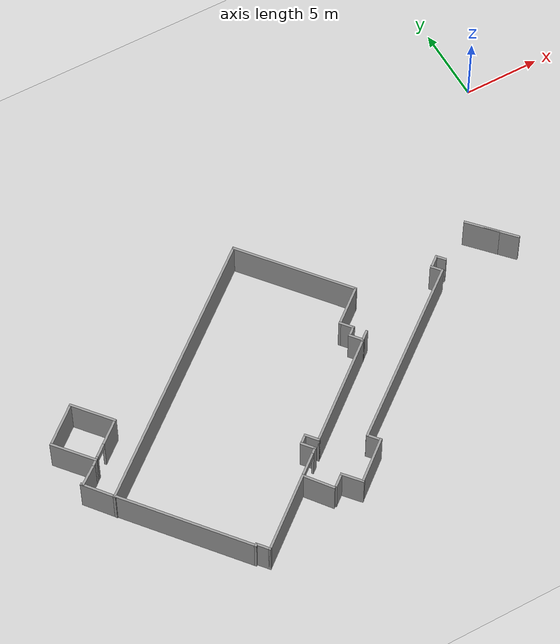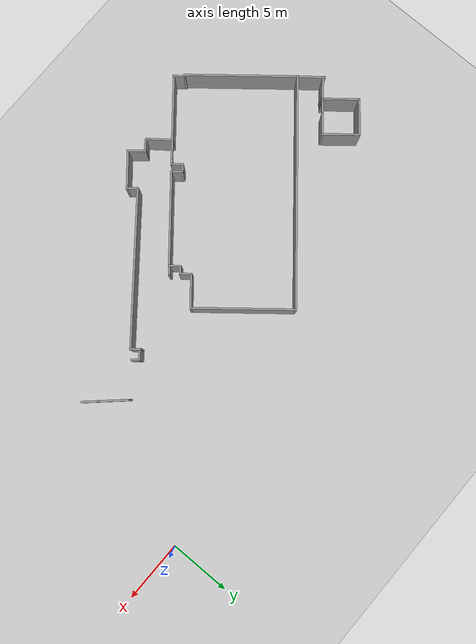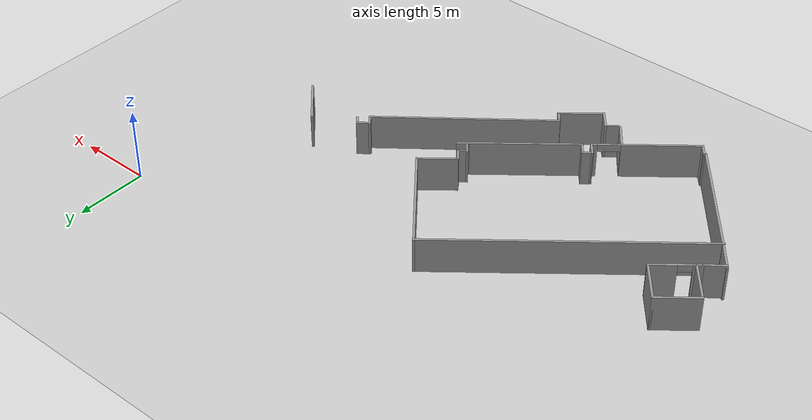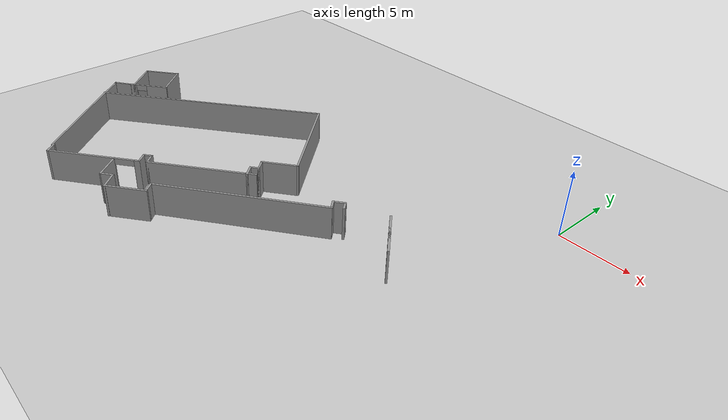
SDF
<sdf version="1.6">
 <world name="default">
  <model name="ground_plane">
   <static>1</static>
   <link name="link">
    <collision name="collision">
     <geometry><plane><normal>0 0 1</normal><size>100 100</size></plane></geometry>
     <surface>
      <contact><collide_bitmask>65535</collide_bitmask></contact>
      <friction><ode><mu>100</mu><mu2>50</mu2></ode></friction>
     </surface>
    </collision>
    <visual name="visual">
     <cast_shadows>0</cast_shadows>
     <geometry><plane><normal>0 0 1</normal><size>100 100</size></plane></geometry>
     <material>
      <script><uri>file://media/materials/scripts/gazebo.material</uri><name>Gazebo/Grey</name></script>
     </material>
    </visual>
   </link>
  </model>
  <model name="wall(2.3)_clone">
   <link name="Wall_0">
    <pose>0.83486 -0.115986 -0.042972 0 -0 0</pose>
    <inertial>
     <mass>1</mass>
     <inertia><ixx>1</ixx><ixy>0</ixy><ixz>0</ixz><iyy>1</iyy><iyz>0</iyz><izz>1</izz></inertia>
    </inertial>
    <visual name="Wall_0_Visual">
     <pose>0 0 1.25 0 -0 0</pose>
     <geometry><box><size>2.3 0.15 2.5</size></box></geometry>
     <material>
      <script><uri>file://media/materials/scripts/gazebo.material</uri><name>Gazebo/Grey</name></script>
      <ambient>1 1 1 1</ambient>
      <shader type="vertex"><normal_map>__default__</normal_map></shader>
      <diffuse>0.7 0.7 0.7 1</diffuse>
      <specular>0.01 0.01 0.01 1</specular>
      <emissive>0 0 0 1</emissive>
     </material>
     <meta><layer>0</layer></meta>
    </visual>
    <collision name="Wall_0_Collision">
     <pose>0 0 1.25 0 -0 0</pose>
     <geometry><box><size>2.25 0.15 2.5</size></box></geometry>
     <surface>
      <friction>
       <ode><mu>1</mu><mu2>1</mu2><fdir1>0 0 0</fdir1><slip1>0</slip1><slip2>0</slip2></ode>
       <torsional>
        <coefficient>1</coefficient>
        <patch_radius>0</patch_radius>
        <surface_radius>0</surface_radius>
        <use_patch_radius>1</use_patch_radius>
        <ode><slip>0</slip></ode>
       </torsional>
      </friction>
      <bounce><restitution_coefficient>0</restitution_coefficient><threshold>1e+06</threshold></bounce>
      <contact>
       <collide_without_contact>0</collide_without_contact>
       <collide_without_contact_bitmask>1</collide_without_contact_bitmask>
       <collide_bitmask>1</collide_bitmask>
       <ode>
        <soft_cfm>0</soft_cfm>
        <soft_erp>0.2</soft_erp>
        <kp>1e+13</kp>
        <kd>1</kd>
        <max_vel>0.01</max_vel>
        <min_depth>0</min_depth>
       </ode>
       <bullet>
        <split_impulse>1</split_impulse>
        <split_impulse_penetration_threshold>-0.01</split_impulse_penetration_threshold>
        <soft_cfm>0</soft_cfm>
        <soft_erp>0.2</soft_erp>
        <kp>1e+13</kp>
        <kd>1</kd>
       </bullet>
      </contact>
     </surface>
    </collision>
   </link>
   <static>1</static>
   <pose>-5.0787 -10.7376 0 0 0 -0.829206</pose>
  </model>
  <model name="wall(2.3)_clone_clone">
   <link name="Wall_0">
    <pose>0.83486 -0.115986 -0.042972 0 -0 0</pose>
    <inertial>
     <mass>1</mass>
     <inertia><ixx>1</ixx><ixy>0</ixy><ixz>0</ixz><iyy>1</iyy><iyz>0</iyz><izz>1</izz></inertia>
    </inertial>
    <visual name="Wall_0_Visual">
     <pose>0 0 1.25 0 -0 0</pose>
     <geometry><box><size>2.3 0.15 2.5</size></box></geometry>
     <material>
      <script><uri>file://media/materials/scripts/gazebo.material</uri><name>Gazebo/Grey</name></script>
      <ambient>1 1 1 1</ambient>
      <shader type="vertex"><normal_map>__default__</normal_map></shader>
      <diffuse>0.7 0.7 0.7 1</diffuse>
      <specular>0.01 0.01 0.01 1</specular>
      <emissive>0 0 0 1</emissive>
     </material>
     <meta><layer>0</layer></meta>
    </visual>
    <collision name="Wall_0_Collision">
     <pose>0 0 1.25 0 -0 0</pose>
     <geometry><box><size>2.25 0.15 2.5</size></box></geometry>
     <surface>
      <friction>
       <ode><mu>1</mu><mu2>1</mu2><fdir1>0 0 0</fdir1><slip1>0</slip1><slip2>0</slip2></ode>
       <torsional>
        <coefficient>1</coefficient>
        <patch_radius>0</patch_radius>
        <surface_radius>0</surface_radius>
        <use_patch_radius>1</use_patch_radius>
        <ode><slip>0</slip></ode>
       </torsional>
      </friction>
      <bounce><restitution_coefficient>0</restitution_coefficient><threshold>1e+06</threshold></bounce>
      <contact>
       <collide_without_contact>0</collide_without_contact>
       <collide_without_contact_bitmask>1</collide_without_contact_bitmask>
       <collide_bitmask>1</collide_bitmask>
       <ode>
        <soft_cfm>0</soft_cfm>
        <soft_erp>0.2</soft_erp>
        <kp>1e+13</kp>
        <kd>1</kd>
        <max_vel>0.01</max_vel>
        <min_depth>0</min_depth>
       </ode>
       <bullet>
        <split_impulse>1</split_impulse>
        <split_impulse_penetration_threshold>-0.01</split_impulse_penetration_threshold>
        <soft_cfm>0</soft_cfm>
        <soft_erp>0.2</soft_erp>
        <kp>1e+13</kp>
        <kd>1</kd>
       </bullet>
      </contact>
     </surface>
    </collision>
   </link>
   <static>1</static>
   <pose>-5.9321 -9.80857 0 0 0 -0.829206</pose>
  </model>
  <model name="wall(0.6)_0">
   <link name="Wall_0">
    <inertial>
     <mass>1</mass>
     <inertia><ixx>1</ixx><ixy>0</ixy><ixz>0</ixz><iyy>1</iyy><iyz>0</iyz><izz>1</izz></inertia>
    </inertial>
    <visual name="Wall_0_Visual">
     <pose>0 0 1.25 0 -0 0</pose>
     <geometry><box><size>0.6 0.15 2.5</size></box></geometry>
     <material>
      <script><uri>file://media/materials/scripts/gazebo.material</uri><name>Gazebo/Grey</name></script>
      <ambient>1 1 1 1</ambient>
      <shader type="vertex"><normal_map>__default__</normal_map></shader>
      <diffuse>0.7 0.7 0.7 1</diffuse>
      <specular>0.01 0.01 0.01 1</specular>
      <emissive>0 0 0 1</emissive>
     </material>
     <meta><layer>0</layer></meta>
    </visual>
    <collision name="Wall_0_Collision">
     <pose>0 0 1.25 0 -0 0</pose>
     <geometry><box><size>2.25 0.15 2.5</size></box></geometry>
     <surface>
      <friction>
       <ode><mu>1</mu><mu2>1</mu2><fdir1>0 0 0</fdir1><slip1>0</slip1><slip2>0</slip2></ode>
       <torsional>
        <coefficient>1</coefficient>
        <patch_radius>0</patch_radius>
        <surface_radius>0</surface_radius>
        <use_patch_radius>1</use_patch_radius>
        <ode><slip>0</slip></ode>
       </torsional>
      </friction>
      <bounce><restitution_coefficient>0</restitution_coefficient><threshold>1e+06</threshold></bounce>
      <contact>
       <collide_without_contact>0</collide_without_contact>
       <collide_without_contact_bitmask>1</collide_without_contact_bitmask>
       <collide_bitmask>1</collide_bitmask>
       <ode>
        <soft_cfm>0</soft_cfm>
        <soft_erp>0.2</soft_erp>
        <kp>1e+13</kp>
        <kd>1</kd>
        <max_vel>0.01</max_vel>
        <min_depth>0</min_depth>
       </ode>
       <bullet>
        <split_impulse>1</split_impulse>
        <split_impulse_penetration_threshold>-0.01</split_impulse_penetration_threshold>
        <soft_cfm>0</soft_cfm>
        <soft_erp>0.2</soft_erp>
        <kp>1e+13</kp>
        <kd>1</kd>
       </bullet>
      </contact>
     </surface>
    </collision>
   </link>
   <static>1</static>
   <pose>-8.78678 -11.2831 0 0 0 -0.868323</pose>
  </model>
  <model name="wall(0.83)_0_clone">
   <link name="Wall_0">
    <inertial>
     <mass>1</mass>
     <inertia><ixx>1</ixx><ixy>0</ixy><ixz>0</ixz><iyy>1</iyy><iyz>0</iyz><izz>1</izz></inertia>
    </inertial>
    <visual name="Wall_0_Visual">
     <pose>0 0 1.25 0 -0 0</pose>
     <geometry><box><size>0.83 0.15 2.5</size></box></geometry>
     <material>
      <script><uri>file://media/materials/scripts/gazebo.material</uri><name>Gazebo/Grey</name></script>
      <ambient>1 1 1 1</ambient>
      <shader type="vertex"><normal_map>__default__</normal_map></shader>
      <diffuse>0.7 0.7 0.7 1</diffuse>
      <specular>0.01 0.01 0.01 1</specular>
      <emissive>0 0 0 1</emissive>
     </material>
     <meta><layer>0</layer></meta>
    </visual>
    <collision name="Wall_0_Collision">
     <pose>0 0 1.25 0 -0 0</pose>
     <geometry><box><size>2.25 0.15 2.5</size></box></geometry>
     <surface>
      <friction>
       <ode><mu>1</mu><mu2>1</mu2><fdir1>0 0 0</fdir1><slip1>0</slip1><slip2>0</slip2></ode>
       <torsional>
        <coefficient>1</coefficient>
        <patch_radius>0</patch_radius>
        <surface_radius>0</surface_radius>
        <use_patch_radius>1</use_patch_radius>
        <ode><slip>0</slip></ode>
       </torsional>
      </friction>
      <bounce><restitution_coefficient>0</restitution_coefficient><threshold>1e+06</threshold></bounce>
      <contact>
       <collide_without_contact>0</collide_without_contact>
       <collide_without_contact_bitmask>1</collide_without_contact_bitmask>
       <collide_bitmask>1</collide_bitmask>
       <ode>
        <soft_cfm>0</soft_cfm>
        <soft_erp>0.2</soft_erp>
        <kp>1e+13</kp>
        <kd>1</kd>
        <max_vel>0.01</max_vel>
        <min_depth>0</min_depth>
       </ode>
       <bullet>
        <split_impulse>1</split_impulse>
        <split_impulse_penetration_threshold>-0.01</split_impulse_penetration_threshold>
        <soft_cfm>0</soft_cfm>
        <soft_erp>0.2</soft_erp>
        <kp>1e+13</kp>
        <kd>1</kd>
       </bullet>
      </contact>
     </surface>
    </collision>
   </link>
   <static>1</static>
   <pose>-9.27906 -11.23 0 0 -0 0.678455</pose>
  </model>
  <model name="wall(0.83)_0_clone_clone">
   <link name="Wall_0">
    <inertial>
     <mass>1</mass>
     <inertia><ixx>1</ixx><ixy>0</ixy><ixz>0</ixz><iyy>1</iyy><iyz>0</iyz><izz>1</izz></inertia>
    </inertial>
    <visual name="Wall_0_Visual">
     <pose>0 0 1.25 0 -0 0</pose>
     <geometry><box><size>0.83 0.15 2.5</size></box></geometry>
     <material>
      <script><uri>file://media/materials/scripts/gazebo.material</uri><name>Gazebo/Grey</name></script>
      <ambient>1 1 1 1</ambient>
      <shader type="vertex"><normal_map>__default__</normal_map></shader>
      <diffuse>0.7 0.7 0.7 1</diffuse>
      <specular>0.01 0.01 0.01 1</specular>
      <emissive>0 0 0 1</emissive>
     </material>
     <meta><layer>0</layer></meta>
    </visual>
    <collision name="Wall_0_Collision">
     <pose>0 0 1.25 0 -0 0</pose>
     <geometry><box><size>2.25 0.15 2.5</size></box></geometry>
     <surface>
      <friction>
       <ode><mu>1</mu><mu2>1</mu2><fdir1>0 0 0</fdir1><slip1>0</slip1><slip2>0</slip2></ode>
       <torsional>
        <coefficient>1</coefficient>
        <patch_radius>0</patch_radius>
        <surface_radius>0</surface_radius>
        <use_patch_radius>1</use_patch_radius>
        <ode><slip>0</slip></ode>
       </torsional>
      </friction>
      <bounce><restitution_coefficient>0</restitution_coefficient><threshold>1e+06</threshold></bounce>
      <contact>
       <collide_without_contact>0</collide_without_contact>
       <collide_without_contact_bitmask>1</collide_without_contact_bitmask>
       <collide_bitmask>1</collide_bitmask>
       <ode>
        <soft_cfm>0</soft_cfm>
        <soft_erp>0.2</soft_erp>
        <kp>1e+13</kp>
        <kd>1</kd>
        <max_vel>0.01</max_vel>
        <min_depth>0</min_depth>
       </ode>
       <bullet>
        <split_impulse>1</split_impulse>
        <split_impulse_penetration_threshold>-0.01</split_impulse_penetration_threshold>
        <soft_cfm>0</soft_cfm>
        <soft_erp>0.2</soft_erp>
        <kp>1e+13</kp>
        <kd>1</kd>
       </bullet>
      </contact>
     </surface>
    </collision>
   </link>
   <static>1</static>
   <pose>-9.43003 -11.7738 0 0 -0 2.26983</pose>
  </model>
  <model name="wall(12.5)_clone">
   <link name="Wall_106">
    <pose>-2.9353 0.017524 0 0 0 -0.005631</pose>
    <inertial>
     <mass>1</mass>
     <inertia><ixx>1</ixx><ixy>0</ixy><ixz>0</ixz><iyy>1</iyy><iyz>0</iyz><izz>1</izz></inertia>
    </inertial>
    <visual name="Wall_106_Visual">
     <pose>0 0 1.25 0 -0 0</pose>
     <geometry><box><size>12.5 0.15 2.5</size></box></geometry>
     <material>
      <script><uri>file://media/materials/scripts/gazebo.material</uri><name>Gazebo/Grey</name></script>
      <ambient>1 1 1 1</ambient>
      <shader type="vertex"><normal_map>__default__</normal_map></shader>
      <diffuse>0.7 0.7 0.7 1</diffuse>
      <specular>0.01 0.01 0.01 1</specular>
      <emissive>0 0 0 1</emissive>
     </material>
     <meta><layer>0</layer></meta>
    </visual>
    <collision name="Wall_106_Collision">
     <pose>0 0 1.25 0 -0 0</pose>
     <geometry><box><size>6.75 0.15 2.5</size></box></geometry>
     <surface>
      <friction>
       <ode><mu>1</mu><mu2>1</mu2><fdir1>0 0 0</fdir1><slip1>0</slip1><slip2>0</slip2></ode>
       <torsional>
        <coefficient>1</coefficient>
        <patch_radius>0</patch_radius>
        <surface_radius>0</surface_radius>
        <use_patch_radius>1</use_patch_radius>
        <ode><slip>0</slip></ode>
       </torsional>
      </friction>
      <bounce><restitution_coefficient>0</restitution_coefficient><threshold>1e+06</threshold></bounce>
      <contact>
       <collide_without_contact>0</collide_without_contact>
       <collide_without_contact_bitmask>1</collide_without_contact_bitmask>
       <collide_bitmask>1</collide_bitmask>
       <ode>
        <soft_cfm>0</soft_cfm>
        <soft_erp>0.2</soft_erp>
        <kp>1e+13</kp>
        <kd>1</kd>
        <max_vel>0.01</max_vel>
        <min_depth>0</min_depth>
       </ode>
       <bullet>
        <split_impulse>1</split_impulse>
        <split_impulse_penetration_threshold>-0.01</split_impulse_penetration_threshold>
        <soft_cfm>0</soft_cfm>
        <soft_erp>0.2</soft_erp>
        <kp>1e+13</kp>
        <kd>1</kd>
       </bullet>
      </contact>
     </surface>
    </collision>
   </link>
   <static>1</static>
   <pose>-11.7429 -14.0693 0 0 -0 0.676604</pose>
  </model>
  <model name="1815">
   <pose>-23.5714 -13.996 0 0 -0 0.685676</pose>
   <link name="Wall_66">
    <pose>-5.50546 -4.85 0 0 -0 3.14159</pose>
    <visual name="Wall_66_Visual_0">
     <pose>-3.39963 0 1.25 0 -0 0</pose>
     <geometry><box><size>0.450736 0.15 2.5</size></box></geometry>
     <material>
      <script><uri>file://media/materials/scripts/gazebo.material</uri><name>Gazebo/Grey</name></script>
      <ambient>1 1 1 1</ambient>
     </material>
     <meta><layer>0</layer></meta>
    </visual>
    <collision name="Wall_66_Collision_0">
     <geometry><box><size>0.450736 0.15 2.5</size></box></geometry>
     <pose>-3.39963 0 1.25 0 -0 0</pose>
    </collision>
    <visual name="Wall_66_Visual_1">
     <pose>0.975368 0 1.25 0 -0 0</pose>
     <geometry><box><size>5.29926 0.15 2.5</size></box></geometry>
     <material>
      <script><uri>file://media/materials/scripts/gazebo.material</uri><name>Gazebo/Grey</name></script>
      <ambient>1 1 1 1</ambient>
     </material>
     <meta><layer>0</layer></meta>
    </visual>
    <collision name="Wall_66_Collision_1">
     <geometry><box><size>5.29926 0.15 2.5</size></box></geometry>
     <pose>0.975368 0 1.25 0 -0 0</pose>
    </collision>
    <visual name="Wall_66_Visual_2">
     <pose>-2.42426 0 2.25 0 -0 0</pose>
     <geometry><box><size>1.5 0.15 0.5</size></box></geometry>
     <material>
      <script><uri>file://media/materials/scripts/gazebo.material</uri><name>Gazebo/Grey</name></script>
      <ambient>1 1 1 1</ambient>
     </material>
     <meta><layer>0</layer></meta>
    </visual>
    <collision name="Wall_66_Collision_2">
     <geometry><box><size>1.5 0.15 0.5</size></box></geometry>
     <pose>-2.42426 0 2.25 0 -0 0</pose>
    </collision>
   </link>
   <link name="Wall_67">
    <collision name="Wall_67_Collision">
     <geometry><box><size>1 0.15 2.5</size></box></geometry>
     <pose>0 0 1.25 0 -0 0</pose>
    </collision>
    <visual name="Wall_67_Visual">
     <pose>0 0 1.25 0 -0 0</pose>
     <geometry><box><size>1 0.15 2.5</size></box></geometry>
     <material>
      <script><uri>file://media/materials/scripts/gazebo.material</uri><name>Gazebo/Grey</name></script>
      <ambient>1 1 1 1</ambient>
     </material>
     <meta><layer>0</layer></meta>
    </visual>
    <pose>-9.05546 -4.425 0 0 -0 1.5708</pose>
   </link>
   <link name="Wall_68">
    <collision name="Wall_68_Collision">
     <geometry><box><size>0.25 0.15 2.5</size></box></geometry>
     <pose>0 0 1.25 0 -0 0</pose>
    </collision>
    <visual name="Wall_68_Visual">
     <pose>0 0 1.25 0 -0 0</pose>
     <geometry><box><size>0.25 0.15 2.5</size></box></geometry>
     <material>
      <script><uri>file://media/materials/scripts/gazebo.material</uri><name>Gazebo/Grey</name></script>
      <ambient>1 1 1 1</ambient>
     </material>
     <meta><layer>0</layer></meta>
    </visual>
    <pose>-9.10546 -4 0 0 -0 3.14159</pose>
   </link>
   <link name="Wall_69">
    <collision name="Wall_69_Collision">
     <geometry><box><size>9 0.15 2.5</size></box></geometry>
     <pose>0 0 1.25 0 -0 0</pose>
    </collision>
    <visual name="Wall_69_Visual">
     <pose>0 0 1.25 0 -0 0</pose>
     <geometry><box><size>9 0.15 2.5</size></box></geometry>
     <material>
      <script><uri>file://media/materials/scripts/gazebo.material</uri><name>Gazebo/Grey</name></script>
      <ambient>1 1 1 1</ambient>
     </material>
     <meta><layer>0</layer></meta>
    </visual>
    <pose>-9.15546 0.425 0 0 -0 1.5708</pose>
   </link>
   <link name="Wall_72">
    <collision name="Wall_72_Collision">
     <geometry><box><size>1 0.15 2.5</size></box></geometry>
     <pose>0 0 1.25 0 -0 0</pose>
    </collision>
    <visual name="Wall_72_Visual">
     <pose>0 0 1.25 0 -0 0</pose>
     <geometry><box><size>1 0.15 2.5</size></box></geometry>
     <material>
      <script><uri>file://media/materials/scripts/gazebo.material</uri><name>Gazebo/Grey</name></script>
      <ambient>1 1 1 1</ambient>
     </material>
     <meta><layer>0</layer></meta>
    </visual>
    <pose>-1.95546 -4.425 0 0 -0 1.5708</pose>
   </link>
   <link name="Wall_73">
    <collision name="Wall_73_Collision">
     <geometry><box><size>0.75 0.15 2.5</size></box></geometry>
     <pose>0 0 1.25 0 -0 0</pose>
    </collision>
    <visual name="Wall_73_Visual">
     <pose>0 0 1.25 0 -0 0</pose>
     <geometry><box><size>0.75 0.15 2.5</size></box></geometry>
     <material>
      <script><uri>file://media/materials/scripts/gazebo.material</uri><name>Gazebo/Grey</name></script>
      <ambient>1 1 1 1</ambient>
     </material>
     <meta><layer>0</layer></meta>
    </visual>
    <pose>-1.65546 -4 0 0 -0 0</pose>
   </link>
   <link name="Wall_74">
    <collision name="Wall_74_Collision">
     <geometry><box><size>1 0.15 2.5</size></box></geometry>
     <pose>0 0 1.25 0 -0 0</pose>
    </collision>
    <visual name="Wall_74_Visual">
     <pose>0 0 1.25 0 -0 0</pose>
     <geometry><box><size>1 0.15 2.5</size></box></geometry>
     <material>
      <script><uri>file://media/materials/scripts/gazebo.material</uri><name>Gazebo/Grey</name></script>
      <ambient>1 1 1 1</ambient>
     </material>
     <meta><layer>0</layer></meta>
    </visual>
    <pose>-1.35546 -4.425 0 0 -0 -1.5708</pose>
   </link>
   <link name="Wall_75">
    <collision name="Wall_75_Collision">
     <geometry><box><size>7.5 0.15 2.5</size></box></geometry>
     <pose>0 0 1.25 0 -0 0</pose>
    </collision>
    <visual name="Wall_75_Visual">
     <pose>0 0 1.25 0 -0 0</pose>
     <geometry><box><size>7.5 0.15 2.5</size></box></geometry>
     <material>
      <script><uri>file://media/materials/scripts/gazebo.material</uri><name>Gazebo/Grey</name></script>
      <ambient>1 1 1 1</ambient>
     </material>
     <meta><layer>0</layer></meta>
    </visual>
    <pose>2.31954 -4.85 0 0 -0 0</pose>
   </link>
   <link name="Wall_76">
    <collision name="Wall_76_Collision">
     <geometry><box><size>1 0.15 2.5</size></box></geometry>
     <pose>0 0 1.25 0 -0 0</pose>
    </collision>
    <visual name="Wall_76_Visual">
     <pose>0 0 1.25 0 -0 0</pose>
     <geometry><box><size>1 0.15 2.5</size></box></geometry>
     <material>
      <script><uri>file://media/materials/scripts/gazebo.material</uri><name>Gazebo/Grey</name></script>
      <ambient>1 1 1 1</ambient>
     </material>
     <meta><layer>0</layer></meta>
    </visual>
    <pose>5.99454 -4.425 0 0 -0 1.5708</pose>
   </link>
   <link name="Wall_77">
    <collision name="Wall_77_Collision">
     <geometry><box><size>0.75 0.15 2.5</size></box></geometry>
     <pose>0 0 1.25 0 -0 0</pose>
    </collision>
    <visual name="Wall_77_Visual">
     <pose>0 0 1.25 0 -0 0</pose>
     <geometry><box><size>0.75 0.15 2.5</size></box></geometry>
     <material>
      <script><uri>file://media/materials/scripts/gazebo.material</uri><name>Gazebo/Grey</name></script>
      <ambient>1 1 1 1</ambient>
     </material>
     <meta><layer>0</layer></meta>
    </visual>
    <pose>6.29454 -4 0 0 -0 0</pose>
   </link>
   <link name="Wall_78">
    <collision name="Wall_78_Collision">
     <geometry><box><size>1 0.15 2.5</size></box></geometry>
     <pose>0 0 1.25 0 -0 0</pose>
    </collision>
    <visual name="Wall_78_Visual">
     <pose>0 0 1.25 0 -0 0</pose>
     <geometry><box><size>1 0.15 2.5</size></box></geometry>
     <material>
      <script><uri>file://media/materials/scripts/gazebo.material</uri><name>Gazebo/Grey</name></script>
      <ambient>1 1 1 1</ambient>
     </material>
     <meta><layer>0</layer></meta>
    </visual>
    <pose>6.59454 -3.575 0 0 -0 1.5708</pose>
   </link>
   <link name="Wall_79">
    <collision name="Wall_79_Collision">
     <geometry><box><size>2.75 0.15 2.5</size></box></geometry>
     <pose>0 0 1.25 0 -0 0</pose>
    </collision>
    <visual name="Wall_79_Visual">
     <pose>0 0 1.25 0 -0 0</pose>
     <geometry><box><size>2.75 0.15 2.5</size></box></geometry>
     <material>
      <script><uri>file://media/materials/scripts/gazebo.material</uri><name>Gazebo/Grey</name></script>
      <ambient>1 1 1 1</ambient>
     </material>
     <meta><layer>0</layer></meta>
    </visual>
    <pose>7.89451 -3.14986 0 0 -0 0.000107</pose>
   </link>
   <link name="Wall_80">
    <collision name="Wall_80_Collision">
     <geometry><box><size>8.12003 0.15 2.5</size></box></geometry>
     <pose>0 0 1.25 0 -0 0</pose>
    </collision>
    <visual name="Wall_80_Visual">
     <pose>0 0 1.25 0 -0 0</pose>
     <geometry><box><size>8.12003 0.15 2.5</size></box></geometry>
     <material>
      <script><uri>file://media/materials/scripts/gazebo.material</uri><name>Gazebo/Grey</name></script>
      <ambient>1 1 1 1</ambient>
     </material>
     <meta><layer>0</layer></meta>
    </visual>
    <pose>9.19448 0.835278 0 0 -0 1.5708</pose>
   </link>
   <link name="Wall_81">
    <collision name="Wall_81_Collision">
     <geometry><box><size>18.539 0.15 2.5</size></box></geometry>
     <pose>0 0 1.25 0 -0 0</pose>
    </collision>
    <visual name="Wall_81_Visual">
     <pose>0 0 1.25 0 -0 0</pose>
     <geometry><box><size>18.539 0.15 2.5</size></box></geometry>
     <material>
      <script><uri>file://media/materials/scripts/gazebo.material</uri><name>Gazebo/Grey</name></script>
      <ambient>1 1 1 1</ambient>
     </material>
     <meta><layer>0</layer></meta>
    </visual>
    <pose>-1.8e-05 4.82028 0 0 -0 3.14159</pose>
   </link>
   <static>1</static>
  </model>
  <model name="wall(0.83)_0_clone_clone_0">
   <link name="Wall_0">
    <inertial>
     <mass>1</mass>
     <inertia><ixx>1</ixx><ixy>0</ixy><ixz>0</ixz><iyy>1</iyy><iyz>0</iyz><izz>1</izz></inertia>
    </inertial>
    <visual name="Wall_0_Visual">
     <pose>0 0 1.25 0 -0 0</pose>
     <geometry><box><size>0.83 0.15 2.5</size></box></geometry>
     <material>
      <script><uri>file://media/materials/scripts/gazebo.material</uri><name>Gazebo/Grey</name></script>
      <ambient>1 1 1 1</ambient>
      <shader type="vertex"><normal_map>__default__</normal_map></shader>
      <diffuse>0.7 0.7 0.7 1</diffuse>
      <specular>0.01 0.01 0.01 1</specular>
      <emissive>0 0 0 1</emissive>
     </material>
     <meta><layer>0</layer></meta>
    </visual>
    <collision name="Wall_0_Collision">
     <pose>0 0 1.25 0 -0 0</pose>
     <geometry><box><size>2.25 0.15 2.5</size></box></geometry>
     <surface>
      <friction>
       <ode><mu>1</mu><mu2>1</mu2><fdir1>0 0 0</fdir1><slip1>0</slip1><slip2>0</slip2></ode>
       <torsional>
        <coefficient>1</coefficient>
        <patch_radius>0</patch_radius>
        <surface_radius>0</surface_radius>
        <use_patch_radius>1</use_patch_radius>
        <ode><slip>0</slip></ode>
       </torsional>
      </friction>
      <bounce><restitution_coefficient>0</restitution_coefficient><threshold>1e+06</threshold></bounce>
      <contact>
       <collide_without_contact>0</collide_without_contact>
       <collide_without_contact_bitmask>1</collide_without_contact_bitmask>
       <collide_bitmask>1</collide_bitmask>
       <ode>
        <soft_cfm>0</soft_cfm>
        <soft_erp>0.2</soft_erp>
        <kp>1e+13</kp>
        <kd>1</kd>
        <max_vel>0.01</max_vel>
        <min_depth>0</min_depth>
       </ode>
       <bullet>
        <split_impulse>1</split_impulse>
        <split_impulse_penetration_threshold>-0.01</split_impulse_penetration_threshold>
        <soft_cfm>0</soft_cfm>
        <soft_erp>0.2</soft_erp>
        <kp>1e+13</kp>
        <kd>1</kd>
       </bullet>
      </contact>
     </surface>
    </collision>
   </link>
   <static>1</static>
   <pose>-15.6578 -13.7679 0 0 -0 0.678455</pose>
  </model>
  <model name="wall(0.83)_0_clone_0">
   <link name="Wall_0">
    <inertial>
     <mass>1</mass>
     <inertia><ixx>1</ixx><ixy>0</ixy><ixz>0</ixz><iyy>1</iyy><iyz>0</iyz><izz>1</izz></inertia>
    </inertial>
    <visual name="Wall_0_Visual">
     <pose>0 0 1.25 0 -0 0</pose>
     <geometry><box><size>0.83 0.15 2.5</size></box></geometry>
     <material>
      <script><uri>file://media/materials/scripts/gazebo.material</uri><name>Gazebo/Grey</name></script>
      <ambient>1 1 1 1</ambient>
      <shader type="vertex"><normal_map>__default__</normal_map></shader>
      <diffuse>0.7 0.7 0.7 1</diffuse>
      <specular>0.01 0.01 0.01 1</specular>
      <emissive>0 0 0 1</emissive>
     </material>
     <meta><layer>0</layer></meta>
    </visual>
    <collision name="Wall_0_Collision">
     <pose>0 0 1.25 0 -0 0</pose>
     <geometry><box><size>2.25 0.15 2.5</size></box></geometry>
     <surface>
      <friction>
       <ode><mu>1</mu><mu2>1</mu2><fdir1>0 0 0</fdir1><slip1>0</slip1><slip2>0</slip2></ode>
       <torsional>
        <coefficient>1</coefficient>
        <patch_radius>0</patch_radius>
        <surface_radius>0</surface_radius>
        <use_patch_radius>1</use_patch_radius>
        <ode><slip>0</slip></ode>
       </torsional>
      </friction>
      <bounce><restitution_coefficient>0</restitution_coefficient><threshold>1e+06</threshold></bounce>
      <contact>
       <collide_without_contact>0</collide_without_contact>
       <collide_without_contact_bitmask>1</collide_without_contact_bitmask>
       <collide_bitmask>1</collide_bitmask>
       <ode>
        <soft_cfm>0</soft_cfm>
        <soft_erp>0.2</soft_erp>
        <kp>1e+13</kp>
        <kd>1</kd>
        <max_vel>0.01</max_vel>
        <min_depth>0</min_depth>
       </ode>
       <bullet>
        <split_impulse>1</split_impulse>
        <split_impulse_penetration_threshold>-0.01</split_impulse_penetration_threshold>
        <soft_cfm>0</soft_cfm>
        <soft_erp>0.2</soft_erp>
        <kp>1e+13</kp>
        <kd>1</kd>
       </bullet>
      </contact>
     </surface>
    </collision>
   </link>
   <static>1</static>
   <pose>-18.6694 -20.0115 0 0 0 -0.880889</pose>
  </model>
  <model name="wall(3)_1">
   <link name="Wall_106">
    <pose>-2.9353 0.017524 0 0 0 -0.005631</pose>
    <inertial>
     <mass>1</mass>
     <inertia><ixx>1</ixx><ixy>0</ixy><ixz>0</ixz><iyy>1</iyy><iyz>0</iyz><izz>1</izz></inertia>
    </inertial>
    <visual name="Wall_106_Visual">
     <pose>0 0 1.25 0 -0 0</pose>
     <geometry><box><size>3 0.15 2.5</size></box></geometry>
     <material>
      <script><uri>file://media/materials/scripts/gazebo.material</uri><name>Gazebo/Grey</name></script>
      <ambient>1 1 1 1</ambient>
      <shader type="vertex"><normal_map>__default__</normal_map></shader>
      <diffuse>0.7 0.7 0.7 1</diffuse>
      <specular>0.01 0.01 0.01 1</specular>
      <emissive>0 0 0 1</emissive>
     </material>
     <meta><layer>0</layer></meta>
    </visual>
    <collision name="Wall_106_Collision">
     <pose>0 0 1.25 0 -0 0</pose>
     <geometry><box><size>6.75 0.15 2.5</size></box></geometry>
     <surface>
      <friction>
       <ode><mu>1</mu><mu2>1</mu2><fdir1>0 0 0</fdir1><slip1>0</slip1><slip2>0</slip2></ode>
       <torsional>
        <coefficient>1</coefficient>
        <patch_radius>0</patch_radius>
        <surface_radius>0</surface_radius>
        <use_patch_radius>1</use_patch_radius>
        <ode><slip>0</slip></ode>
       </torsional>
      </friction>
      <bounce><restitution_coefficient>0</restitution_coefficient><threshold>1e+06</threshold></bounce>
      <contact>
       <collide_without_contact>0</collide_without_contact>
       <collide_without_contact_bitmask>1</collide_without_contact_bitmask>
       <collide_bitmask>1</collide_bitmask>
       <ode>
        <soft_cfm>0</soft_cfm>
        <soft_erp>0.2</soft_erp>
        <kp>1e+13</kp>
        <kd>1</kd>
        <max_vel>0.01</max_vel>
        <min_depth>0</min_depth>
       </ode>
       <bullet>
        <split_impulse>1</split_impulse>
        <split_impulse_penetration_threshold>-0.01</split_impulse_penetration_threshold>
        <soft_cfm>0</soft_cfm>
        <soft_erp>0.2</soft_erp>
        <kp>1e+13</kp>
        <kd>1</kd>
       </bullet>
      </contact>
     </surface>
    </collision>
   </link>
   <static>1</static>
   <pose>-17.1928 -19.4205 0 0 -0 0.695306</pose>
  </model>
  <model name="wall(1.5)_0">
   <link name="Wall_0">
    <inertial>
     <mass>1</mass>
     <inertia><ixx>1</ixx><ixy>0</ixy><ixz>0</ixz><iyy>1</iyy><iyz>0</iyz><izz>1</izz></inertia>
    </inertial>
    <visual name="Wall_0_Visual">
     <pose>0 0 1.25 0 -0 0</pose>
     <geometry><box><size>1.5 0.15 2.5</size></box></geometry>
     <material>
      <script><uri>file://media/materials/scripts/gazebo.material</uri><name>Gazebo/Grey</name></script>
      <ambient>1 1 1 1</ambient>
      <shader type="vertex"><normal_map>__default__</normal_map></shader>
      <diffuse>0.7 0.7 0.7 1</diffuse>
      <specular>0.01 0.01 0.01 1</specular>
      <emissive>0 0 0 1</emissive>
     </material>
     <meta><layer>0</layer></meta>
    </visual>
    <collision name="Wall_0_Collision">
     <pose>0 0 1.25 0 -0 0</pose>
     <geometry><box><size>2.25 0.15 2.5</size></box></geometry>
     <surface>
      <friction>
       <ode><mu>1</mu><mu2>1</mu2><fdir1>0 0 0</fdir1><slip1>0</slip1><slip2>0</slip2></ode>
       <torsional>
        <coefficient>1</coefficient>
        <patch_radius>0</patch_radius>
        <surface_radius>0</surface_radius>
        <use_patch_radius>1</use_patch_radius>
        <ode><slip>0</slip></ode>
       </torsional>
      </friction>
      <bounce><restitution_coefficient>0</restitution_coefficient><threshold>1e+06</threshold></bounce>
      <contact>
       <collide_without_contact>0</collide_without_contact>
       <collide_without_contact_bitmask>1</collide_without_contact_bitmask>
       <collide_bitmask>1</collide_bitmask>
       <ode>
        <soft_cfm>0</soft_cfm>
        <soft_erp>0.2</soft_erp>
        <kp>1e+13</kp>
        <kd>1</kd>
        <max_vel>0.01</max_vel>
        <min_depth>0</min_depth>
       </ode>
       <bullet>
        <split_impulse>1</split_impulse>
        <split_impulse_penetration_threshold>-0.01</split_impulse_penetration_threshold>
        <soft_cfm>0</soft_cfm>
        <soft_erp>0.2</soft_erp>
        <kp>1e+13</kp>
        <kd>1</kd>
       </bullet>
      </contact>
     </surface>
    </collision>
   </link>
   <static>1</static>
   <pose>-21.0752 -21.7678 0 0 0 -0.86654</pose>
  </model>
  <model name="wall(0.83)_0_clone_1">
   <link name="Wall_0">
    <inertial>
     <mass>1</mass>
     <inertia><ixx>1</ixx><ixy>0</ixy><ixz>0</ixz><iyy>1</iyy><iyz>0</iyz><izz>1</izz></inertia>
    </inertial>
    <visual name="Wall_0_Visual">
     <pose>0 0 1.25 0 -0 0</pose>
     <geometry><box><size>0.83 0.15 2.5</size></box></geometry>
     <material>
      <script><uri>file://media/materials/scripts/gazebo.material</uri><name>Gazebo/Grey</name></script>
      <ambient>1 1 1 1</ambient>
      <shader type="vertex"><normal_map>__default__</normal_map></shader>
      <diffuse>0.7 0.7 0.7 1</diffuse>
      <specular>0.01 0.01 0.01 1</specular>
      <emissive>0 0 0 1</emissive>
     </material>
     <meta><layer>0</layer></meta>
    </visual>
    <collision name="Wall_0_Collision">
     <pose>0 0 1.25 0 -0 0</pose>
     <geometry><box><size>2.25 0.15 2.5</size></box></geometry>
     <surface>
      <friction>
       <ode><mu>1</mu><mu2>1</mu2><fdir1>0 0 0</fdir1><slip1>0</slip1><slip2>0</slip2></ode>
       <torsional>
        <coefficient>1</coefficient>
        <patch_radius>0</patch_radius>
        <surface_radius>0</surface_radius>
        <use_patch_radius>1</use_patch_radius>
        <ode><slip>0</slip></ode>
       </torsional>
      </friction>
      <bounce><restitution_coefficient>0</restitution_coefficient><threshold>1e+06</threshold></bounce>
      <contact>
       <collide_without_contact>0</collide_without_contact>
       <collide_without_contact_bitmask>1</collide_without_contact_bitmask>
       <collide_bitmask>1</collide_bitmask>
       <ode>
        <soft_cfm>0</soft_cfm>
        <soft_erp>0.2</soft_erp>
        <kp>1e+13</kp>
        <kd>1</kd>
        <max_vel>0.01</max_vel>
        <min_depth>0</min_depth>
       </ode>
       <bullet>
        <split_impulse>1</split_impulse>
        <split_impulse_penetration_threshold>-0.01</split_impulse_penetration_threshold>
        <soft_cfm>0</soft_cfm>
        <soft_erp>0.2</soft_erp>
        <kp>1e+13</kp>
        <kd>1</kd>
       </bullet>
      </contact>
     </surface>
    </collision>
   </link>
   <static>1</static>
   <pose>-21.8862 -21.5534 0 0 -0 0.684741</pose>
  </model>
  <model name="wall(2)_0">
   <link name="Wall_0">
    <pose>0.83486 -0.115985 -0.042972 0 -0 0</pose>
    <inertial>
     <mass>1</mass>
     <inertia><ixx>1</ixx><ixy>0</ixy><ixz>0</ixz><iyy>1</iyy><iyz>0</iyz><izz>1</izz></inertia>
    </inertial>
    <visual name="Wall_0_Visual">
     <pose>0 0 1.25 0 -0 0</pose>
     <geometry><box><size>2 0.15 2.5</size></box></geometry>
     <material>
      <script><uri>file://media/materials/scripts/gazebo.material</uri><name>Gazebo/Grey</name></script>
      <ambient>1 1 1 1</ambient>
      <shader type="vertex"><normal_map>__default__</normal_map></shader>
      <diffuse>0.7 0.7 0.7 1</diffuse>
      <specular>0.01 0.01 0.01 1</specular>
      <emissive>0 0 0 1</emissive>
     </material>
     <meta><layer>0</layer></meta>
    </visual>
    <collision name="Wall_0_Collision">
     <pose>0 0 1.25 0 -0 0</pose>
     <geometry><box><size>2.25 0.15 2.5</size></box></geometry>
     <surface>
      <friction>
       <ode><mu>1</mu><mu2>1</mu2><fdir1>0 0 0</fdir1><slip1>0</slip1><slip2>0</slip2></ode>
       <torsional>
        <coefficient>1</coefficient>
        <patch_radius>0</patch_radius>
        <surface_radius>0</surface_radius>
        <use_patch_radius>1</use_patch_radius>
        <ode><slip>0</slip></ode>
       </torsional>
      </friction>
      <bounce><restitution_coefficient>0</restitution_coefficient><threshold>1e+06</threshold></bounce>
      <contact>
       <collide_without_contact>0</collide_without_contact>
       <collide_without_contact_bitmask>1</collide_without_contact_bitmask>
       <collide_bitmask>1</collide_bitmask>
       <ode>
        <soft_cfm>0</soft_cfm>
        <soft_erp>0.2</soft_erp>
        <kp>1e+13</kp>
        <kd>1</kd>
        <max_vel>0.01</max_vel>
        <min_depth>0</min_depth>
       </ode>
       <bullet>
        <split_impulse>1</split_impulse>
        <split_impulse_penetration_threshold>-0.01</split_impulse_penetration_threshold>
        <soft_cfm>0</soft_cfm>
        <soft_erp>0.2</soft_erp>
        <kp>1e+13</kp>
        <kd>1</kd>
       </bullet>
      </contact>
     </surface>
    </collision>
   </link>
   <static>1</static>
   <pose>-23.2912 -20.3185 0 0 0 -0.917642</pose>
  </model>
  <model name="near_tuna_room_clone_clone_0_clone_clone_clone">
   <pose>-33.5216 -11.5079 0 0 -0 0.69119</pose>
   <link name="Wall_20">
    <collision name="Wall_20_Collision">
     <geometry><box><size>0.5 0.15 2.5</size></box></geometry>
     <pose>0 0 1.25 0 -0 0</pose>
    </collision>
    <visual name="Wall_20_Visual">
     <pose>0 0 1.25 0 -0 0</pose>
     <geometry><box><size>0.5 0.15 2.5</size></box></geometry>
     <material>
      <script><uri>file://media/materials/scripts/gazebo.material</uri><name>Gazebo/Grey</name></script>
      <ambient>1 1 1 1</ambient>
     </material>
     <meta><layer>0</layer></meta>
    </visual>
    <pose>-1.425 -1.425 0 0 -0 0</pose>
   </link>
   <link name="Wall_21">
    <collision name="Wall_21_Collision">
     <geometry><box><size>3 0.15 2.5</size></box></geometry>
     <pose>0 0 1.25 0 -0 0</pose>
    </collision>
    <visual name="Wall_21_Visual">
     <pose>0 0 1.25 0 -0 0</pose>
     <geometry><box><size>3 0.15 2.5</size></box></geometry>
     <material>
      <script><uri>file://media/materials/scripts/gazebo.material</uri><name>Gazebo/Grey</name></script>
      <ambient>1 1 1 1</ambient>
     </material>
     <meta><layer>0</layer></meta>
    </visual>
    <pose>-1.25 -0 0 0 -0 1.5708</pose>
   </link>
   <link name="Wall_22">
    <collision name="Wall_22_Collision">
     <geometry><box><size>3 0.15 2.5</size></box></geometry>
     <pose>0 0 1.25 0 -0 0</pose>
    </collision>
    <visual name="Wall_22_Visual">
     <pose>0 0 1.25 0 -0 0</pose>
     <geometry><box><size>3 0.15 2.5</size></box></geometry>
     <material>
      <script><uri>file://media/materials/scripts/gazebo.material</uri><name>Gazebo/Grey</name></script>
      <ambient>1 1 1 1</ambient>
     </material>
     <meta><layer>0</layer></meta>
    </visual>
    <pose>0.175 1.425 0 0 -0 0</pose>
   </link>
   <link name="Wall_23">
    <collision name="Wall_23_Collision">
     <geometry><box><size>3 0.15 2.5</size></box></geometry>
     <pose>0 0 1.25 0 -0 0</pose>
    </collision>
    <visual name="Wall_23_Visual">
     <pose>0 0 1.25 0 -0 0</pose>
     <geometry><box><size>3 0.15 2.5</size></box></geometry>
     <material>
      <script><uri>file://media/materials/scripts/gazebo.material</uri><name>Gazebo/Grey</name></script>
      <ambient>1 1 1 1</ambient>
     </material>
     <meta><layer>0</layer></meta>
    </visual>
    <pose>1.6 -0 0 0 -0 -1.5708</pose>
   </link>
   <link name="Wall_24">
    <pose>0.175 -1.425 0 0 -0 3.14159</pose>
    <visual name="Wall_24_Visual_0">
     <pose>-0.5975 0 1.25 0 -0 0</pose>
     <geometry><box><size>1.805 0.15 2.5</size></box></geometry>
     <material>
      <script><uri>file://media/materials/scripts/gazebo.material</uri><name>Gazebo/Grey</name></script>
      <ambient>1 1 1 1</ambient>
     </material>
     <meta><layer>0</layer></meta>
    </visual>
    <collision name="Wall_24_Collision_0">
     <geometry><box><size>1.805 0.15 2.5</size></box></geometry>
     <pose>-0.5975 0 1.25 0 -0 0</pose>
    </collision>
    <visual name="Wall_24_Visual_1">
     <pose>1.3525 0 1.25 0 -0 0</pose>
     <geometry><box><size>0.295 0.15 2.5</size></box></geometry>
     <material>
      <script><uri>file://media/materials/scripts/gazebo.material</uri><name>Gazebo/Grey</name></script>
      <ambient>1 1 1 1</ambient>
     </material>
     <meta><layer>0</layer></meta>
    </visual>
    <collision name="Wall_24_Collision_1">
     <geometry><box><size>0.295 0.15 2.5</size></box></geometry>
     <pose>1.3525 0 1.25 0 -0 0</pose>
    </collision>
    <visual name="Wall_24_Visual_2">
     <pose>0.755 0 2.25 0 -0 0</pose>
     <geometry><box><size>0.9 0.15 0.5</size></box></geometry>
     <material>
      <script><uri>file://media/materials/scripts/gazebo.material</uri><name>Gazebo/Grey</name></script>
      <ambient>1 1 1 1</ambient>
     </material>
     <meta><layer>0</layer></meta>
    </visual>
    <collision name="Wall_24_Collision_2">
     <geometry><box><size>0.9 0.15 0.5</size></box></geometry>
     <pose>0.755 0 2.25 0 -0 0</pose>
    </collision>
   </link>
   <static>1</static>
  </model>
  <model name="wall(2.3)_0">
   <link name="Wall_0">
    <pose>0.83486 -0.115986 -0.042972 0 -0 0</pose>
    <inertial>
     <mass>1</mass>
     <inertia><ixx>1</ixx><ixy>0</ixy><ixz>0</ixz><iyy>1</iyy><iyz>0</iyz><izz>1</izz></inertia>
    </inertial>
    <visual name="Wall_0_Visual">
     <pose>0 0 1.25 0 -0 0</pose>
     <geometry><box><size>2.3 0.15 2.5</size></box></geometry>
     <material>
      <script><uri>file://media/materials/scripts/gazebo.material</uri><name>Gazebo/Grey</name></script>
      <ambient>1 1 1 1</ambient>
      <shader type="vertex"><normal_map>__default__</normal_map></shader>
      <diffuse>0.7 0.7 0.7 1</diffuse>
      <specular>0.01 0.01 0.01 1</specular>
      <emissive>0 0 0 1</emissive>
     </material>
     <meta><layer>0</layer></meta>
    </visual>
    <collision name="Wall_0_Collision">
     <pose>0 0 1.25 0 -0 0</pose>
     <geometry><box><size>2.25 0.15 2.5</size></box></geometry>
     <surface>
      <friction>
       <ode><mu>1</mu><mu2>1</mu2><fdir1>0 0 0</fdir1><slip1>0</slip1><slip2>0</slip2></ode>
       <torsional>
        <coefficient>1</coefficient>
        <patch_radius>0</patch_radius>
        <surface_radius>0</surface_radius>
        <use_patch_radius>1</use_patch_radius>
        <ode><slip>0</slip></ode>
       </torsional>
      </friction>
      <bounce><restitution_coefficient>0</restitution_coefficient><threshold>1e+06</threshold></bounce>
      <contact>
       <collide_without_contact>0</collide_without_contact>
       <collide_without_contact_bitmask>1</collide_without_contact_bitmask>
       <collide_bitmask>1</collide_bitmask>
       <ode>
        <soft_cfm>0</soft_cfm>
        <soft_erp>0.2</soft_erp>
        <kp>1e+13</kp>
        <kd>1</kd>
        <max_vel>0.01</max_vel>
        <min_depth>0</min_depth>
       </ode>
       <bullet>
        <split_impulse>1</split_impulse>
        <split_impulse_penetration_threshold>-0.01</split_impulse_penetration_threshold>
        <soft_cfm>0</soft_cfm>
        <soft_erp>0.2</soft_erp>
        <kp>1e+13</kp>
        <kd>1</kd>
       </bullet>
      </contact>
     </surface>
    </collision>
   </link>
   <static>1</static>
   <pose>-34.7936 -14.5273 0 0 0 -0.900613</pose>
  </model>
  <model name="wall(1.5)_1">
   <link name="Wall_0">
    <inertial>
     <mass>1</mass>
     <inertia><ixx>1</ixx><ixy>0</ixy><ixz>0</ixz><iyy>1</iyy><iyz>0</iyz><izz>1</izz></inertia>
    </inertial>
    <visual name="Wall_0_Visual">
     <pose>0 0 1.25 0 -0 0</pose>
     <geometry><box><size>1.5 0.15 2.5</size></box></geometry>
     <material>
      <script><uri>file://media/materials/scripts/gazebo.material</uri><name>Gazebo/Grey</name></script>
      <ambient>1 1 1 1</ambient>
      <shader type="vertex"><normal_map>__default__</normal_map></shader>
      <diffuse>0.7 0.7 0.7 1</diffuse>
      <specular>0.01 0.01 0.01 1</specular>
      <emissive>0 0 0 1</emissive>
     </material>
     <meta><layer>0</layer></meta>
    </visual>
    <collision name="Wall_0_Collision">
     <pose>0 0 1.25 0 -0 0</pose>
     <geometry><box><size>2.25 0.15 2.5</size></box></geometry>
     <surface>
      <friction>
       <ode><mu>1</mu><mu2>1</mu2><fdir1>0 0 0</fdir1><slip1>0</slip1><slip2>0</slip2></ode>
       <torsional>
        <coefficient>1</coefficient>
        <patch_radius>0</patch_radius>
        <surface_radius>0</surface_radius>
        <use_patch_radius>1</use_patch_radius>
        <ode><slip>0</slip></ode>
       </torsional>
      </friction>
      <bounce><restitution_coefficient>0</restitution_coefficient><threshold>1e+06</threshold></bounce>
      <contact>
       <collide_without_contact>0</collide_without_contact>
       <collide_without_contact_bitmask>1</collide_without_contact_bitmask>
       <collide_bitmask>1</collide_bitmask>
       <ode>
        <soft_cfm>0</soft_cfm>
        <soft_erp>0.2</soft_erp>
        <kp>1e+13</kp>
        <kd>1</kd>
        <max_vel>0.01</max_vel>
        <min_depth>0</min_depth>
       </ode>
       <bullet>
        <split_impulse>1</split_impulse>
        <split_impulse_penetration_threshold>-0.01</split_impulse_penetration_threshold>
        <soft_cfm>0</soft_cfm>
        <soft_erp>0.2</soft_erp>
        <kp>1e+13</kp>
        <kd>1</kd>
       </bullet>
      </contact>
     </surface>
    </collision>
   </link>
   <static>1</static>
   <pose>-34.4059 -14.0677 0 0 -0 0.649596</pose>
  </model>
 </world>
</sdf>
